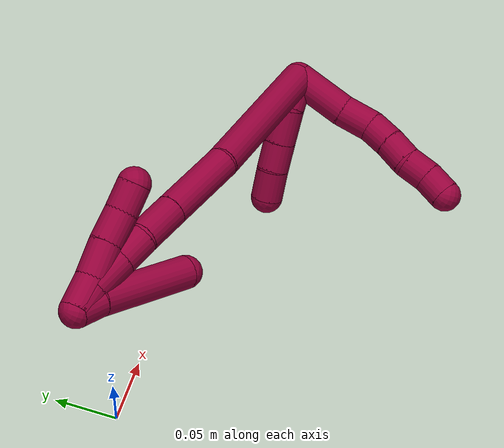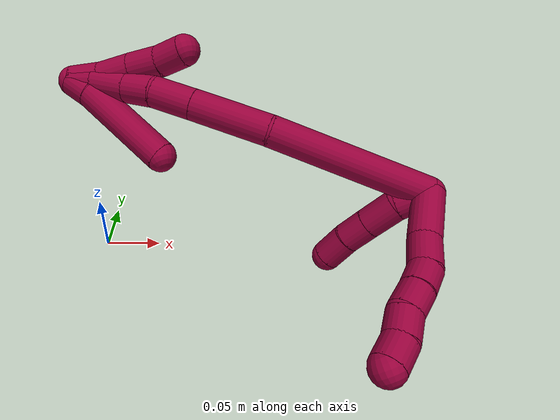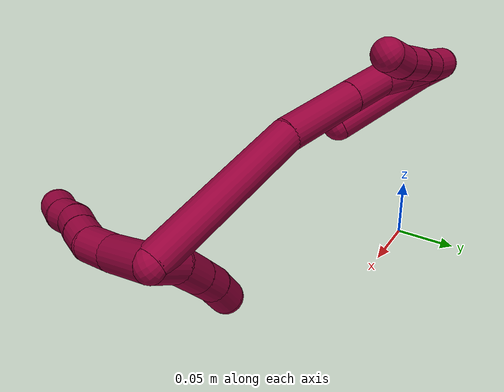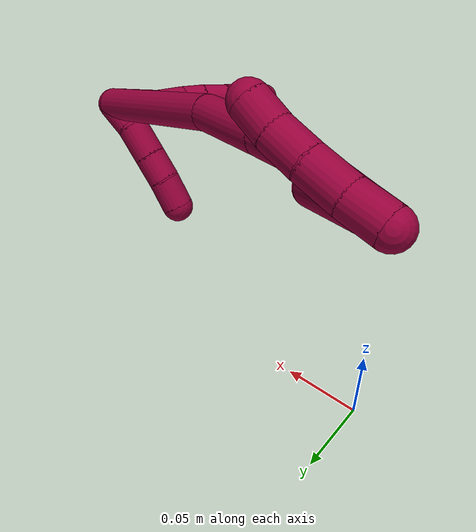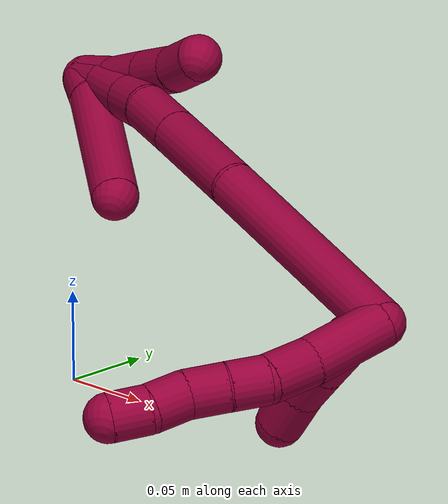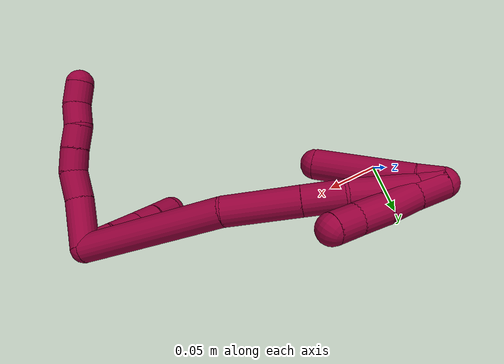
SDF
<sdf version="1.7">
 <world name="default">
  <model name="8">
   <static>0</static>
   <link name="8">
    <collision name="collision-cylinder-e_1_2_8">
     <pose>-0.008307 0.011519 0.016279 -0.615799 -0.394683 0.126998</pose>
     <geometry><cylinder><radius>0.0125</radius><length>0.043206</length></cylinder></geometry>
     <surface>
      <friction><ode><mu>1.16</mu><mu2>1.16</mu2><slip1>0</slip1><slip2>0</slip2></ode></friction>
      <contact><ode><kp>1e+06</kp><kd>1</kd><max_vel>0</max_vel><min_depth>0.001</min_depth></ode></contact>
     </surface>
    </collision>
    <visual name="visual-cylinder-e_1_2_8">
     <pose>-0.008307 0.011519 0.016279 -0.615799 -0.394683 0.126998</pose>
     <geometry><cylinder><radius>0.0125</radius><length>0.043206</length></cylinder></geometry>
     <material><ambient>0.584314 0 0.227451 1</ambient></material>
    </visual>
    <collision name="collision-cylinder-e_2_8_9">
     <pose>-0.020053 0.031142 0.041979 -0.710387 -0.269982 0.100671</pose>
     <geometry><cylinder><radius>0.0125</radius><length>0.02579</length></cylinder></geometry>
     <surface>
      <friction><ode><mu>1.16</mu><mu2>1.16</mu2><slip1>0</slip1><slip2>0</slip2></ode></friction>
      <contact><ode><kp>1e+06</kp><kd>1</kd><max_vel>0</max_vel><min_depth>0.001</min_depth></ode></contact>
     </surface>
    </collision>
    <visual name="visual-cylinder-e_2_8_9">
     <pose>-0.020053 0.031142 0.041979 -0.710387 -0.269982 0.100671</pose>
     <geometry><cylinder><radius>0.0125</radius><length>0.02579</length></cylinder></geometry>
     <material><ambient>0.584314 0 0.227451 1</ambient></material>
    </visual>
    <collision name="collision-cylinder-e_3_9_10">
     <pose>-0.028241 0.046504 0.056523 -0.956251 -0.490956 0.258221</pose>
     <geometry><cylinder><radius>0.0125</radius><length>0.020146</length></cylinder></geometry>
     <surface>
      <friction><ode><mu>1.16</mu><mu2>1.16</mu2><slip1>0</slip1><slip2>0</slip2></ode></friction>
      <contact><ode><kp>1e+06</kp><kd>1</kd><max_vel>0</max_vel><min_depth>0.001</min_depth></ode></contact>
     </surface>
    </collision>
    <visual name="visual-cylinder-e_3_9_10">
     <pose>-0.028241 0.046504 0.056523 -0.956251 -0.490956 0.258221</pose>
     <geometry><cylinder><radius>0.0125</radius><length>0.020146</length></cylinder></geometry>
     <material><ambient>0.584314 0 0.227451 1</ambient></material>
    </visual>
    <collision name="collision-cylinder-e_4_10_11">
     <pose>-0.038723 0.060911 0.066515 -0.972799 -0.585306 0.315987</pose>
     <geometry><cylinder><radius>0.0125</radius><length>0.020755</length></cylinder></geometry>
     <surface>
      <friction><ode><mu>1.16</mu><mu2>1.16</mu2><slip1>0</slip1><slip2>0</slip2></ode></friction>
      <contact><ode><kp>1e+06</kp><kd>1</kd><max_vel>0</max_vel><min_depth>0.001</min_depth></ode></contact>
     </surface>
    </collision>
    <visual name="visual-cylinder-e_4_10_11">
     <pose>-0.038723 0.060911 0.066515 -0.972799 -0.585306 0.315987</pose>
     <geometry><cylinder><radius>0.0125</radius><length>0.020755</length></cylinder></geometry>
     <material><ambient>0.584314 0 0.227451 1</ambient></material>
    </visual>
    <collision name="collision-cylinder-e_5_11_12">
     <pose>-0.048367 0.074189 0.078279 -0.726693 -0.400982 0.154235</pose>
     <geometry><cylinder><radius>0.0125</radius><length>0.020038</length></cylinder></geometry>
     <surface>
      <friction><ode><mu>1.16</mu><mu2>1.16</mu2><slip1>0</slip1><slip2>0</slip2></ode></friction>
      <contact><ode><kp>1e+06</kp><kd>1</kd><max_vel>0</max_vel><min_depth>0.001</min_depth></ode></contact>
     </surface>
    </collision>
    <visual name="visual-cylinder-e_5_11_12">
     <pose>-0.048367 0.074189 0.078279 -0.726693 -0.400982 0.154235</pose>
     <geometry><cylinder><radius>0.0125</radius><length>0.020038</length></cylinder></geometry>
     <material><ambient>0.584314 0 0.227451 1</ambient></material>
    </visual>
    <collision name="collision-cylinder-e_6_12_6">
     <pose>-0.057738 0.087135 0.090109 -0.944121 -0.57557 0.299984</pose>
     <geometry><cylinder><radius>0.0125</radius><length>0.020065</length></cylinder></geometry>
     <surface>
      <friction><ode><mu>1.16</mu><mu2>1.16</mu2><slip1>0</slip1><slip2>0</slip2></ode></friction>
      <contact><ode><kp>1e+06</kp><kd>1</kd><max_vel>0</max_vel><min_depth>0.001</min_depth></ode></contact>
     </surface>
    </collision>
    <visual name="visual-cylinder-e_6_12_6">
     <pose>-0.057738 0.087135 0.090109 -0.944121 -0.57557 0.299984</pose>
     <geometry><cylinder><radius>0.0125</radius><length>0.020065</length></cylinder></geometry>
     <material><ambient>0.584314 0 0.227451 1</ambient></material>
    </visual>
    <collision name="collision-cylinder-e_1_2_13">
     <pose>-0.012565 -0.000561 -0.000781 2.5188 -1.49446 -2.47283</pose>
     <geometry><cylinder><radius>0.0125</radius><length>0.025204</length></cylinder></geometry>
     <surface>
      <friction><ode><mu>1.16</mu><mu2>1.16</mu2><slip1>0</slip1><slip2>0</slip2></ode></friction>
      <contact><ode><kp>1e+06</kp><kd>1</kd><max_vel>0</max_vel><min_depth>0.001</min_depth></ode></contact>
     </surface>
    </collision>
    <visual name="visual-cylinder-e_1_2_13">
     <pose>-0.012565 -0.000561 -0.000781 2.5188 -1.49446 -2.47283</pose>
     <geometry><cylinder><radius>0.0125</radius><length>0.025204</length></cylinder></geometry>
     <material><ambient>0.584314 0 0.227451 1</ambient></material>
    </visual>
    <collision name="collision-cylinder-e_2_13_14">
     <pose>-0.038407 -0.004355 0.000348 1.03761 -1.29514 -0.815362</pose>
     <geometry><cylinder><radius>0.0125</radius><length>0.027595</length></cylinder></geometry>
     <surface>
      <friction><ode><mu>1.16</mu><mu2>1.16</mu2><slip1>0</slip1><slip2>0</slip2></ode></friction>
      <contact><ode><kp>1e+06</kp><kd>1</kd><max_vel>0</max_vel><min_depth>0.001</min_depth></ode></contact>
     </surface>
    </collision>
    <visual name="visual-cylinder-e_2_13_14">
     <pose>-0.038407 -0.004355 0.000348 1.03761 -1.29514 -0.815362</pose>
     <geometry><cylinder><radius>0.0125</radius><length>0.027595</length></cylinder></geometry>
     <material><ambient>0.584314 0 0.227451 1</ambient></material>
    </visual>
    <collision name="collision-cylinder-e_3_14_15">
     <pose>-0.062539 -0.010294 0.003971 1.00581 -1.28393 -0.780319</pose>
     <geometry><cylinder><radius>0.0125</radius><length>0.022636</length></cylinder></geometry>
     <surface>
      <friction><ode><mu>1.16</mu><mu2>1.16</mu2><slip1>0</slip1><slip2>0</slip2></ode></friction>
      <contact><ode><kp>1e+06</kp><kd>1</kd><max_vel>0</max_vel><min_depth>0.001</min_depth></ode></contact>
     </surface>
    </collision>
    <visual name="visual-cylinder-e_3_14_15">
     <pose>-0.062539 -0.010294 0.003971 1.00581 -1.28393 -0.780319</pose>
     <geometry><cylinder><radius>0.0125</radius><length>0.022636</length></cylinder></geometry>
     <material><ambient>0.584314 0 0.227451 1</ambient></material>
    </visual>
    <collision name="collision-cylinder-e_4_15_5">
     <pose>-0.084695 -0.016788 0.008652 0.906588 -1.16819 -0.623045</pose>
     <geometry><cylinder><radius>0.0125</radius><length>0.024566</length></cylinder></geometry>
     <surface>
      <friction><ode><mu>1.16</mu><mu2>1.16</mu2><slip1>0</slip1><slip2>0</slip2></ode></friction>
      <contact><ode><kp>1e+06</kp><kd>1</kd><max_vel>0</max_vel><min_depth>0.001</min_depth></ode></contact>
     </surface>
    </collision>
    <visual name="visual-cylinder-e_4_15_5">
     <pose>-0.084695 -0.016788 0.008652 0.906588 -1.16819 -0.623045</pose>
     <geometry><cylinder><radius>0.0125</radius><length>0.024566</length></cylinder></geometry>
     <material><ambient>0.584314 0 0.227451 1</ambient></material>
    </visual>
    <collision name="collision-cylinder-e_1_2_16">
     <pose>-0.041244 0.027184 -0.041928 -2.56638 -0.69003 1.76428</pose>
     <geometry><cylinder><radius>0.0125</radius><length>0.129583</length></cylinder></geometry>
     <surface>
      <friction><ode><mu>1.16</mu><mu2>1.16</mu2><slip1>0</slip1><slip2>0</slip2></ode></friction>
      <contact><ode><kp>1e+06</kp><kd>1</kd><max_vel>0</max_vel><min_depth>0.001</min_depth></ode></contact>
     </surface>
    </collision>
    <visual name="visual-cylinder-e_1_2_16">
     <pose>-0.041244 0.027184 -0.041928 -2.56638 -0.69003 1.76428</pose>
     <geometry><cylinder><radius>0.0125</radius><length>0.129583</length></cylinder></geometry>
     <material><ambient>0.584314 0 0.227451 1</ambient></material>
    </visual>
    <collision name="collision-cylinder-e_2_16_17">
     <pose>-0.104495 0.062081 -0.104916 -2.79051 -0.775929 2.32266</pose>
     <geometry><cylinder><radius>0.0125</radius><length>0.062845</length></cylinder></geometry>
     <surface>
      <friction><ode><mu>1.16</mu><mu2>1.16</mu2><slip1>0</slip1><slip2>0</slip2></ode></friction>
      <contact><ode><kp>1e+06</kp><kd>1</kd><max_vel>0</max_vel><min_depth>0.001</min_depth></ode></contact>
     </surface>
    </collision>
    <visual name="visual-cylinder-e_2_16_17">
     <pose>-0.104495 0.062081 -0.104916 -2.79051 -0.775929 2.32266</pose>
     <geometry><cylinder><radius>0.0125</radius><length>0.062845</length></cylinder></geometry>
     <material><ambient>0.584314 0 0.227451 1</ambient></material>
    </visual>
    <collision name="collision-cylinder-e_3_17_18">
     <pose>-0.138277 0.073711 -0.137054 -2.80176 -0.786447 2.35725</pose>
     <geometry><cylinder><radius>0.0125</radius><length>0.033269</length></cylinder></geometry>
     <surface>
      <friction><ode><mu>1.16</mu><mu2>1.16</mu2><slip1>0</slip1><slip2>0</slip2></ode></friction>
      <contact><ode><kp>1e+06</kp><kd>1</kd><max_vel>0</max_vel><min_depth>0.001</min_depth></ode></contact>
     </surface>
    </collision>
    <visual name="visual-cylinder-e_3_17_18">
     <pose>-0.138277 0.073711 -0.137054 -2.80176 -0.786447 2.35725</pose>
     <geometry><cylinder><radius>0.0125</radius><length>0.033269</length></cylinder></geometry>
     <material><ambient>0.584314 0 0.227451 1</ambient></material>
    </visual>
    <collision name="collision-cylinder-e_4_18_19">
     <pose>-0.159641 0.078346 -0.155231 -3.04069 -0.931047 2.94124</pose>
     <geometry><cylinder><radius>0.0125</radius><length>0.023905</length></cylinder></geometry>
     <surface>
      <friction><ode><mu>1.16</mu><mu2>1.16</mu2><slip1>0</slip1><slip2>0</slip2></ode></friction>
      <contact><ode><kp>1e+06</kp><kd>1</kd><max_vel>0</max_vel><min_depth>0.001</min_depth></ode></contact>
     </surface>
    </collision>
    <visual name="visual-cylinder-e_4_18_19">
     <pose>-0.159641 0.078346 -0.155231 -3.04069 -0.931047 2.94124</pose>
     <geometry><cylinder><radius>0.0125</radius><length>0.023905</length></cylinder></geometry>
     <material><ambient>0.584314 0 0.227451 1</ambient></material>
    </visual>
    <collision name="collision-cylinder-e_5_19_20">
     <pose>-0.18098 0.080384 -0.171277 -2.9952 -0.914885 2.84586</pose>
     <geometry><cylinder><radius>0.0125</radius><length>0.029656</length></cylinder></geometry>
     <surface>
      <friction><ode><mu>1.16</mu><mu2>1.16</mu2><slip1>0</slip1><slip2>0</slip2></ode></friction>
      <contact><ode><kp>1e+06</kp><kd>1</kd><max_vel>0</max_vel><min_depth>0.001</min_depth></ode></contact>
     </surface>
    </collision>
    <visual name="visual-cylinder-e_5_19_20">
     <pose>-0.18098 0.080384 -0.171277 -2.9952 -0.914885 2.84586</pose>
     <geometry><cylinder><radius>0.0125</radius><length>0.029656</length></cylinder></geometry>
     <material><ambient>0.584314 0 0.227451 1</ambient></material>
    </visual>
    <collision name="collision-cylinder-e_6_20_1">
     <pose>-0.201779 0.083041 -0.185114 -2.87452 -1.06005 2.69087</pose>
     <geometry><cylinder><radius>0.0125</radius><length>0.020743</length></cylinder></geometry>
     <surface>
      <friction><ode><mu>1.16</mu><mu2>1.16</mu2><slip1>0</slip1><slip2>0</slip2></ode></friction>
      <contact><ode><kp>1e+06</kp><kd>1</kd><max_vel>0</max_vel><min_depth>0.001</min_depth></ode></contact>
     </surface>
    </collision>
    <visual name="visual-cylinder-e_6_20_1">
     <pose>-0.201779 0.083041 -0.185114 -2.87452 -1.06005 2.69087</pose>
     <geometry><cylinder><radius>0.0125</radius><length>0.020743</length></cylinder></geometry>
     <material><ambient>0.584314 0 0.227451 1</ambient></material>
    </visual>
    <collision name="collision-cylinder-e_1_1_21">
     <pose>-0.198991 0.082291 -0.18583 0.463784 1.19521 0.318721</pose>
     <geometry><cylinder><radius>0.0125</radius><length>0.025445</length></cylinder></geometry>
     <surface>
      <friction><ode><mu>1.16</mu><mu2>1.16</mu2><slip1>0</slip1><slip2>0</slip2></ode></friction>
      <contact><ode><kp>1e+06</kp><kd>1</kd><max_vel>0</max_vel><min_depth>0.001</min_depth></ode></contact>
     </surface>
    </collision>
    <visual name="visual-cylinder-e_1_1_21">
     <pose>-0.198991 0.082291 -0.18583 0.463784 1.19521 0.318721</pose>
     <geometry><cylinder><radius>0.0125</radius><length>0.025445</length></cylinder></geometry>
     <material><ambient>0.584314 0 0.227451 1</ambient></material>
    </visual>
    <collision name="collision-cylinder-e_2_21_22">
     <pose>-0.17388 0.078883 -0.178819 0.435569 1.33931 0.346873</pose>
     <geometry><cylinder><radius>0.0125</radius><length>0.027279</length></cylinder></geometry>
     <surface>
      <friction><ode><mu>1.16</mu><mu2>1.16</mu2><slip1>0</slip1><slip2>0</slip2></ode></friction>
      <contact><ode><kp>1e+06</kp><kd>1</kd><max_vel>0</max_vel><min_depth>0.001</min_depth></ode></contact>
     </surface>
    </collision>
    <visual name="visual-cylinder-e_2_21_22">
     <pose>-0.17388 0.078883 -0.178819 0.435569 1.33931 0.346873</pose>
     <geometry><cylinder><radius>0.0125</radius><length>0.027279</length></cylinder></geometry>
     <material><ambient>0.584314 0 0.227451 1</ambient></material>
    </visual>
    <collision name="collision-cylinder-e_3_22_23">
     <pose>-0.14855 0.076927 -0.172589 0.185343 1.29191 0.139892</pose>
     <geometry><cylinder><radius>0.0125</radius><length>0.025077</length></cylinder></geometry>
     <surface>
      <friction><ode><mu>1.16</mu><mu2>1.16</mu2><slip1>0</slip1><slip2>0</slip2></ode></friction>
      <contact><ode><kp>1e+06</kp><kd>1</kd><max_vel>0</max_vel><min_depth>0.001</min_depth></ode></contact>
     </surface>
    </collision>
    <visual name="visual-cylinder-e_3_22_23">
     <pose>-0.14855 0.076927 -0.172589 0.185343 1.29191 0.139892</pose>
     <geometry><cylinder><radius>0.0125</radius><length>0.025077</length></cylinder></geometry>
     <material><ambient>0.584314 0 0.227451 1</ambient></material>
    </visual>
    <collision name="collision-cylinder-e_4_23_4">
     <pose>-0.125582 0.077044 -0.16732 -0.381595 1.38761 -0.318578</pose>
     <geometry><cylinder><radius>0.0125</radius><length>0.022199</length></cylinder></geometry>
     <surface>
      <friction><ode><mu>1.16</mu><mu2>1.16</mu2><slip1>0</slip1><slip2>0</slip2></ode></friction>
      <contact><ode><kp>1e+06</kp><kd>1</kd><max_vel>0</max_vel><min_depth>0.001</min_depth></ode></contact>
     </surface>
    </collision>
    <visual name="visual-cylinder-e_4_23_4">
     <pose>-0.125582 0.077044 -0.16732 -0.381595 1.38761 -0.318578</pose>
     <geometry><cylinder><radius>0.0125</radius><length>0.022199</length></cylinder></geometry>
     <material><ambient>0.584314 0 0.227451 1</ambient></material>
    </visual>
    <collision name="collision-cylinder-e_1_1_24">
     <pose>-0.205376 0.083385 -0.181465 0.115923 0.565103 0.033689</pose>
     <geometry><cylinder><radius>0.0125</radius><length>0.020357</length></cylinder></geometry>
     <surface>
      <friction><ode><mu>1.16</mu><mu2>1.16</mu2><slip1>0</slip1><slip2>0</slip2></ode></friction>
      <contact><ode><kp>1e+06</kp><kd>1</kd><max_vel>0</max_vel><min_depth>0.001</min_depth></ode></contact>
     </surface>
    </collision>
    <visual name="visual-cylinder-e_1_1_24">
     <pose>-0.205376 0.083385 -0.181465 0.115923 0.565103 0.033689</pose>
     <geometry><cylinder><radius>0.0125</radius><length>0.020357</length></cylinder></geometry>
     <material><ambient>0.584314 0 0.227451 1</ambient></material>
    </visual>
    <collision name="collision-cylinder-e_2_24_3">
     <pose>-0.183539 0.076115 -0.13718 0.173781 0.42412 0.037505</pose>
     <geometry><cylinder><radius>0.0125</radius><length>0.079643</length></cylinder></geometry>
     <surface>
      <friction><ode><mu>1.16</mu><mu2>1.16</mu2><slip1>0</slip1><slip2>0</slip2></ode></friction>
      <contact><ode><kp>1e+06</kp><kd>1</kd><max_vel>0</max_vel><min_depth>0.001</min_depth></ode></contact>
     </surface>
    </collision>
    <visual name="visual-cylinder-e_2_24_3">
     <pose>-0.183539 0.076115 -0.13718 0.173781 0.42412 0.037505</pose>
     <geometry><cylinder><radius>0.0125</radius><length>0.079643</length></cylinder></geometry>
     <material><ambient>0.584314 0 0.227451 1</ambient></material>
    </visual>
    <collision name="collision-sphere-3">
     <pose>-0.167151 0.06984 -0.101434 0 -0 0</pose>
     <geometry><sphere><radius>0.0125</radius></sphere></geometry>
     <surface>
      <friction><ode><mu>1.16</mu><mu2>1.16</mu2><slip1>0</slip1><slip2>0</slip2></ode></friction>
      <contact><ode><kp>1e+06</kp><kd>1</kd><max_vel>0</max_vel><min_depth>0.001</min_depth></ode></contact>
     </surface>
    </collision>
    <visual name="visual-sphere-3">
     <pose>-0.167151 0.06984 -0.101434 0 -0 0</pose>
     <geometry><sphere><radius>0.0125</radius></sphere></geometry>
     <material><ambient>0.584314 0 0.227451 1</ambient></material>
    </visual>
    <collision name="collision-sphere-24">
     <pose>-0.199926 0.08239 -0.172927 0 -0 0</pose>
     <geometry><sphere><radius>0.0125</radius></sphere></geometry>
     <surface>
      <friction><ode><mu>1.16</mu><mu2>1.16</mu2><slip1>0</slip1><slip2>0</slip2></ode></friction>
      <contact><ode><kp>1e+06</kp><kd>1</kd><max_vel>0</max_vel><min_depth>0.001</min_depth></ode></contact>
     </surface>
    </collision>
    <visual name="visual-sphere-24">
     <pose>-0.199926 0.08239 -0.172927 0 -0 0</pose>
     <geometry><sphere><radius>0.0125</radius></sphere></geometry>
     <material><ambient>0.584314 0 0.227451 1</ambient></material>
    </visual>
    <collision name="collision-sphere-4">
     <pose>-0.114669 0.077797 -0.165444 0 -0 0</pose>
     <geometry><sphere><radius>0.0125</radius></sphere></geometry>
     <surface>
      <friction><ode><mu>1.16</mu><mu2>1.16</mu2><slip1>0</slip1><slip2>0</slip2></ode></friction>
      <contact><ode><kp>1e+06</kp><kd>1</kd><max_vel>0</max_vel><min_depth>0.001</min_depth></ode></contact>
     </surface>
    </collision>
    <visual name="visual-sphere-4">
     <pose>-0.114669 0.077797 -0.165444 0 -0 0</pose>
     <geometry><sphere><radius>0.0125</radius></sphere></geometry>
     <material><ambient>0.584314 0 0.227451 1</ambient></material>
    </visual>
    <collision name="collision-sphere-23">
     <pose>-0.136496 0.076291 -0.169197 0 -0 0</pose>
     <geometry><sphere><radius>0.0125</radius></sphere></geometry>
     <surface>
      <friction><ode><mu>1.16</mu><mu2>1.16</mu2><slip1>0</slip1><slip2>0</slip2></ode></friction>
      <contact><ode><kp>1e+06</kp><kd>1</kd><max_vel>0</max_vel><min_depth>0.001</min_depth></ode></contact>
     </surface>
    </collision>
    <visual name="visual-sphere-23">
     <pose>-0.136496 0.076291 -0.169197 0 -0 0</pose>
     <geometry><sphere><radius>0.0125</radius></sphere></geometry>
     <material><ambient>0.584314 0 0.227451 1</ambient></material>
    </visual>
    <collision name="collision-sphere-22">
     <pose>-0.160605 0.077563 -0.175982 0 -0 0</pose>
     <geometry><sphere><radius>0.0125</radius></sphere></geometry>
     <surface>
      <friction><ode><mu>1.16</mu><mu2>1.16</mu2><slip1>0</slip1><slip2>0</slip2></ode></friction>
      <contact><ode><kp>1e+06</kp><kd>1</kd><max_vel>0</max_vel><min_depth>0.001</min_depth></ode></contact>
     </surface>
    </collision>
    <visual name="visual-sphere-22">
     <pose>-0.160605 0.077563 -0.175982 0 -0 0</pose>
     <geometry><sphere><radius>0.0125</radius></sphere></geometry>
     <material><ambient>0.584314 0 0.227451 1</ambient></material>
    </visual>
    <collision name="collision-sphere-21">
     <pose>-0.187156 0.080204 -0.181656 0 -0 0</pose>
     <geometry><sphere><radius>0.0125</radius></sphere></geometry>
     <surface>
      <friction><ode><mu>1.16</mu><mu2>1.16</mu2><slip1>0</slip1><slip2>0</slip2></ode></friction>
      <contact><ode><kp>1e+06</kp><kd>1</kd><max_vel>0</max_vel><min_depth>0.001</min_depth></ode></contact>
     </surface>
    </collision>
    <visual name="visual-sphere-21">
     <pose>-0.187156 0.080204 -0.181656 0 -0 0</pose>
     <geometry><sphere><radius>0.0125</radius></sphere></geometry>
     <material><ambient>0.584314 0 0.227451 1</ambient></material>
    </visual>
    <collision name="collision-sphere-1">
     <pose>-0.210827 0.084379 -0.190004 0 -0 0</pose>
     <geometry><sphere><radius>0.0125</radius></sphere></geometry>
     <surface>
      <friction><ode><mu>1.16</mu><mu2>1.16</mu2><slip1>0</slip1><slip2>0</slip2></ode></friction>
      <contact><ode><kp>1e+06</kp><kd>1</kd><max_vel>0</max_vel><min_depth>0.001</min_depth></ode></contact>
     </surface>
    </collision>
    <visual name="visual-sphere-1">
     <pose>-0.210827 0.084379 -0.190004 0 -0 0</pose>
     <geometry><sphere><radius>0.0125</radius></sphere></geometry>
     <material><ambient>0.584314 0 0.227451 1</ambient></material>
    </visual>
    <collision name="collision-sphere-12">
     <pose>-0.052278 0.080317 0.085173 0 -0 0</pose>
     <geometry><sphere><radius>0.0125</radius></sphere></geometry>
     <surface>
      <friction><ode><mu>1.16</mu><mu2>1.16</mu2><slip1>0</slip1><slip2>0</slip2></ode></friction>
      <contact><ode><kp>1e+06</kp><kd>1</kd><max_vel>0</max_vel><min_depth>0.001</min_depth></ode></contact>
     </surface>
    </collision>
    <visual name="visual-sphere-12">
     <pose>-0.052278 0.080317 0.085173 0 -0 0</pose>
     <geometry><sphere><radius>0.0125</radius></sphere></geometry>
     <material><ambient>0.584314 0 0.227451 1</ambient></material>
    </visual>
    <collision name="collision-sphere-11">
     <pose>-0.044456 0.06806 0.071385 0 -0 0</pose>
     <geometry><sphere><radius>0.0125</radius></sphere></geometry>
     <surface>
      <friction><ode><mu>1.16</mu><mu2>1.16</mu2><slip1>0</slip1><slip2>0</slip2></ode></friction>
      <contact><ode><kp>1e+06</kp><kd>1</kd><max_vel>0</max_vel><min_depth>0.001</min_depth></ode></contact>
     </surface>
    </collision>
    <visual name="visual-sphere-11">
     <pose>-0.044456 0.06806 0.071385 0 -0 0</pose>
     <geometry><sphere><radius>0.0125</radius></sphere></geometry>
     <material><ambient>0.584314 0 0.227451 1</ambient></material>
    </visual>
    <collision name="collision-sphere-10">
     <pose>-0.03299 0.053762 0.061645 0 -0 0</pose>
     <geometry><sphere><radius>0.0125</radius></sphere></geometry>
     <surface>
      <friction><ode><mu>1.16</mu><mu2>1.16</mu2><slip1>0</slip1><slip2>0</slip2></ode></friction>
      <contact><ode><kp>1e+06</kp><kd>1</kd><max_vel>0</max_vel><min_depth>0.001</min_depth></ode></contact>
     </surface>
    </collision>
    <visual name="visual-sphere-10">
     <pose>-0.03299 0.053762 0.061645 0 -0 0</pose>
     <geometry><sphere><radius>0.0125</radius></sphere></geometry>
     <material><ambient>0.584314 0 0.227451 1</ambient></material>
    </visual>
    <collision name="collision-sphere-9">
     <pose>-0.023492 0.039246 0.051401 0 -0 0</pose>
     <geometry><sphere><radius>0.0125</radius></sphere></geometry>
     <surface>
      <friction><ode><mu>1.16</mu><mu2>1.16</mu2><slip1>0</slip1><slip2>0</slip2></ode></friction>
      <contact><ode><kp>1e+06</kp><kd>1</kd><max_vel>0</max_vel><min_depth>0.001</min_depth></ode></contact>
     </surface>
    </collision>
    <visual name="visual-sphere-9">
     <pose>-0.023492 0.039246 0.051401 0 -0 0</pose>
     <geometry><sphere><radius>0.0125</radius></sphere></geometry>
     <material><ambient>0.584314 0 0.227451 1</ambient></material>
    </visual>
    <collision name="collision-sphere-2">
     <geometry><sphere><radius>0.0125</radius></sphere></geometry>
     <surface>
      <friction><ode><mu>1.16</mu><mu2>1.16</mu2><slip1>0</slip1><slip2>0</slip2></ode></friction>
      <contact><ode><kp>1e+06</kp><kd>1</kd><max_vel>0</max_vel><min_depth>0.001</min_depth></ode></contact>
     </surface>
    </collision>
    <visual name="visual-sphere-2">
     <geometry><sphere><radius>0.0125</radius></sphere></geometry>
     <material><ambient>0.584314 0 0.227451 1</ambient></material>
    </visual>
    <collision name="collision-sphere-19">
     <pose>-0.169229 0.079065 -0.16233 0 -0 0</pose>
     <geometry><sphere><radius>0.0125</radius></sphere></geometry>
     <surface>
      <friction><ode><mu>1.16</mu><mu2>1.16</mu2><slip1>0</slip1><slip2>0</slip2></ode></friction>
      <contact><ode><kp>1e+06</kp><kd>1</kd><max_vel>0</max_vel><min_depth>0.001</min_depth></ode></contact>
     </surface>
    </collision>
    <visual name="visual-sphere-19">
     <pose>-0.169229 0.079065 -0.16233 0 -0 0</pose>
     <geometry><sphere><radius>0.0125</radius></sphere></geometry>
     <material><ambient>0.584314 0 0.227451 1</ambient></material>
    </visual>
    <collision name="collision-sphere-8">
     <pose>-0.016613 0.023037 0.032558 0 -0 0</pose>
     <geometry><sphere><radius>0.0125</radius></sphere></geometry>
     <surface>
      <friction><ode><mu>1.16</mu><mu2>1.16</mu2><slip1>0</slip1><slip2>0</slip2></ode></friction>
      <contact><ode><kp>1e+06</kp><kd>1</kd><max_vel>0</max_vel><min_depth>0.001</min_depth></ode></contact>
     </surface>
    </collision>
    <visual name="visual-sphere-8">
     <pose>-0.016613 0.023037 0.032558 0 -0 0</pose>
     <geometry><sphere><radius>0.0125</radius></sphere></geometry>
     <material><ambient>0.584314 0 0.227451 1</ambient></material>
    </visual>
    <collision name="collision-sphere-6">
     <pose>-0.063199 0.093952 0.095044 0 -0 0</pose>
     <geometry><sphere><radius>0.0125</radius></sphere></geometry>
     <surface>
      <friction><ode><mu>1.16</mu><mu2>1.16</mu2><slip1>0</slip1><slip2>0</slip2></ode></friction>
      <contact><ode><kp>1e+06</kp><kd>1</kd><max_vel>0</max_vel><min_depth>0.001</min_depth></ode></contact>
     </surface>
    </collision>
    <visual name="visual-sphere-6">
     <pose>-0.063199 0.093952 0.095044 0 -0 0</pose>
     <geometry><sphere><radius>0.0125</radius></sphere></geometry>
     <material><ambient>0.584314 0 0.227451 1</ambient></material>
    </visual>
    <collision name="collision-sphere-13">
     <pose>-0.02513 -0.001121 -0.001561 0 -0 0</pose>
     <geometry><sphere><radius>0.0125</radius></sphere></geometry>
     <surface>
      <friction><ode><mu>1.16</mu><mu2>1.16</mu2><slip1>0</slip1><slip2>0</slip2></ode></friction>
      <contact><ode><kp>1e+06</kp><kd>1</kd><max_vel>0</max_vel><min_depth>0.001</min_depth></ode></contact>
     </surface>
    </collision>
    <visual name="visual-sphere-13">
     <pose>-0.02513 -0.001121 -0.001561 0 -0 0</pose>
     <geometry><sphere><radius>0.0125</radius></sphere></geometry>
     <material><ambient>0.584314 0 0.227451 1</ambient></material>
    </visual>
    <collision name="collision-sphere-14">
     <pose>-0.051683 -0.007589 0.002256 0 -0 0</pose>
     <geometry><sphere><radius>0.0125</radius></sphere></geometry>
     <surface>
      <friction><ode><mu>1.16</mu><mu2>1.16</mu2><slip1>0</slip1><slip2>0</slip2></ode></friction>
      <contact><ode><kp>1e+06</kp><kd>1</kd><max_vel>0</max_vel><min_depth>0.001</min_depth></ode></contact>
     </surface>
    </collision>
    <visual name="visual-sphere-14">
     <pose>-0.051683 -0.007589 0.002256 0 -0 0</pose>
     <geometry><sphere><radius>0.0125</radius></sphere></geometry>
     <material><ambient>0.584314 0 0.227451 1</ambient></material>
    </visual>
    <collision name="collision-sphere-15">
     <pose>-0.073394 -0.012999 0.005685 0 -0 0</pose>
     <geometry><sphere><radius>0.0125</radius></sphere></geometry>
     <surface>
      <friction><ode><mu>1.16</mu><mu2>1.16</mu2><slip1>0</slip1><slip2>0</slip2></ode></friction>
      <contact><ode><kp>1e+06</kp><kd>1</kd><max_vel>0</max_vel><min_depth>0.001</min_depth></ode></contact>
     </surface>
    </collision>
    <visual name="visual-sphere-15">
     <pose>-0.073394 -0.012999 0.005685 0 -0 0</pose>
     <geometry><sphere><radius>0.0125</radius></sphere></geometry>
     <material><ambient>0.584314 0 0.227451 1</ambient></material>
    </visual>
    <collision name="collision-sphere-5">
     <pose>-0.095996 -0.020578 0.011619 0 -0 0</pose>
     <geometry><sphere><radius>0.0125</radius></sphere></geometry>
     <surface>
      <friction><ode><mu>1.16</mu><mu2>1.16</mu2><slip1>0</slip1><slip2>0</slip2></ode></friction>
      <contact><ode><kp>1e+06</kp><kd>1</kd><max_vel>0</max_vel><min_depth>0.001</min_depth></ode></contact>
     </surface>
    </collision>
    <visual name="visual-sphere-5">
     <pose>-0.095996 -0.020578 0.011619 0 -0 0</pose>
     <geometry><sphere><radius>0.0125</radius></sphere></geometry>
     <material><ambient>0.584314 0 0.227451 1</ambient></material>
    </visual>
    <collision name="collision-sphere-16">
     <pose>-0.082487 0.054367 -0.083855 0 -0 0</pose>
     <geometry><sphere><radius>0.0125</radius></sphere></geometry>
     <surface>
      <friction><ode><mu>1.16</mu><mu2>1.16</mu2><slip1>0</slip1><slip2>0</slip2></ode></friction>
      <contact><ode><kp>1e+06</kp><kd>1</kd><max_vel>0</max_vel><min_depth>0.001</min_depth></ode></contact>
     </surface>
    </collision>
    <visual name="visual-sphere-16">
     <pose>-0.082487 0.054367 -0.083855 0 -0 0</pose>
     <geometry><sphere><radius>0.0125</radius></sphere></geometry>
     <material><ambient>0.584314 0 0.227451 1</ambient></material>
    </visual>
    <collision name="collision-sphere-17">
     <pose>-0.126503 0.069794 -0.125976 0 -0 0</pose>
     <geometry><sphere><radius>0.0125</radius></sphere></geometry>
     <surface>
      <friction><ode><mu>1.16</mu><mu2>1.16</mu2><slip1>0</slip1><slip2>0</slip2></ode></friction>
      <contact><ode><kp>1e+06</kp><kd>1</kd><max_vel>0</max_vel><min_depth>0.001</min_depth></ode></contact>
     </surface>
    </collision>
    <visual name="visual-sphere-17">
     <pose>-0.126503 0.069794 -0.125976 0 -0 0</pose>
     <geometry><sphere><radius>0.0125</radius></sphere></geometry>
     <material><ambient>0.584314 0 0.227451 1</ambient></material>
    </visual>
    <collision name="collision-sphere-18">
     <pose>-0.150052 0.077627 -0.148132 0 -0 0</pose>
     <geometry><sphere><radius>0.0125</radius></sphere></geometry>
     <surface>
      <friction><ode><mu>1.16</mu><mu2>1.16</mu2><slip1>0</slip1><slip2>0</slip2></ode></friction>
      <contact><ode><kp>1e+06</kp><kd>1</kd><max_vel>0</max_vel><min_depth>0.001</min_depth></ode></contact>
     </surface>
    </collision>
    <visual name="visual-sphere-18">
     <pose>-0.150052 0.077627 -0.148132 0 -0 0</pose>
     <geometry><sphere><radius>0.0125</radius></sphere></geometry>
     <material><ambient>0.584314 0 0.227451 1</ambient></material>
    </visual>
    <collision name="collision-sphere-20">
     <pose>-0.192732 0.081703 -0.180224 0 -0 0</pose>
     <geometry><sphere><radius>0.0125</radius></sphere></geometry>
     <surface>
      <friction><ode><mu>1.16</mu><mu2>1.16</mu2><slip1>0</slip1><slip2>0</slip2></ode></friction>
      <contact><ode><kp>1e+06</kp><kd>1</kd><max_vel>0</max_vel><min_depth>0.001</min_depth></ode></contact>
     </surface>
    </collision>
    <visual name="visual-sphere-20">
     <pose>-0.192732 0.081703 -0.180224 0 -0 0</pose>
     <geometry><sphere><radius>0.0125</radius></sphere></geometry>
     <material><ambient>0.584314 0 0.227451 1</ambient></material>
    </visual>
    <inertial>
     <pose>-0.098997 0.049943 -0.071347 0 -0 0</pose>
     <mass>0.75</mass>
     <inertia><ixx>0.000158</ixx><ixy>0</ixy><ixz>0</ixz><iyy>0.00037</iyy><iyz>0</iyz><izz>4.8e-05</izz></inertia>
    </inertial>
   </link>
   <pose>0.274189 -0.057264 0.108766 2.30715 -0.542767 0.032175</pose>
  </model>
 </world>
</sdf>
